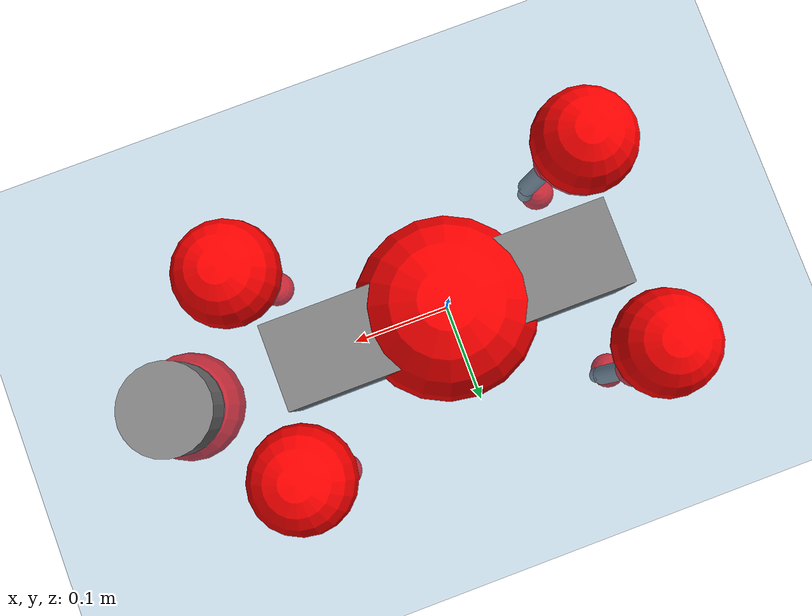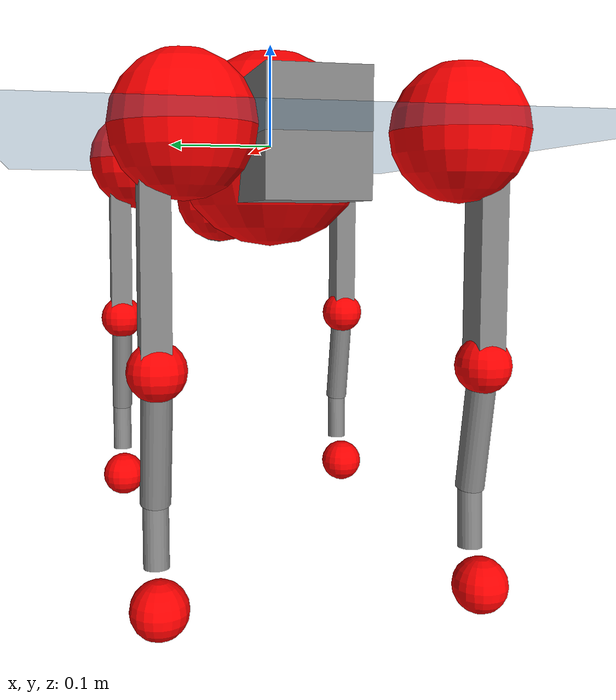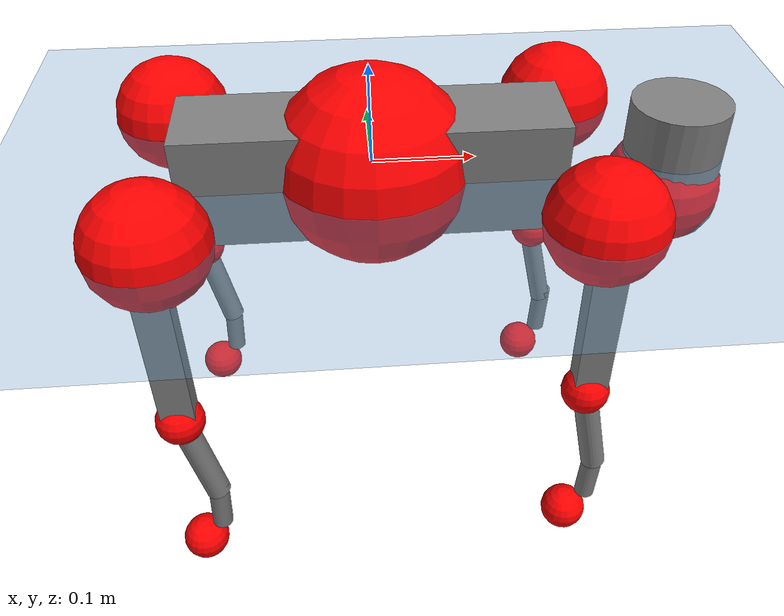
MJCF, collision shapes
<mujoco model="go2">
  <compiler angle="radian" assetdir="assets" balanceinertia="true" inertiafromgeom="false"/>

  <option timestep="0.005" density="1.2" viscosity="2e-05"/>

  <size nkey="1"/>

  <visual>
    <quality shadowsize="8192"/>
    <map shadowclip="0.5"/>
  </visual>

  <default>
    <default class="/">
      <geom contype="0" conaffinity="0" group="1" solref="-1000 -80"/>
      <site size="0.01 0.005 0.005" group="5"/>
      <general forcelimited="true" biastype="affine" gainprm="20" biasprm="0 -20 -0.5"/>
      <default class="go2">
        <joint armature="0.01" damping="0.01" frictionloss="0.2"/>
        <geom condim="1" margin="0.001"/>
        <default class="visual">
          <geom type="mesh" group="2"/>
        </default>
        <default class="collision">
          <geom group="3"/>
          <default class="foot">
            <geom size="0.022 0 0" condim="6" priority="1" friction="0.8 0.02 0.01" solimp="0.015 1 0.022"/>
          </default>
        </default>
        <default class="reward_collision_sphere">
          <geom group="5" rgba="1 0 0 1"/>
        </default>
      </default>
    </default>
  </default>

  <asset>
    <texture type="skybox" colorspace="auto" name="//unnamed_texture_0" builtin="gradient" rgb1="0.95 0.95 0.95" rgb2="0.95 0.95 0.95" width="100" height="600"/>
    <texture type="2d" colorspace="auto" name="texplane" builtin="checker" rgb1="0.345 0.575 0.748" rgb2="0.345 0.575 0.748" markrgb="1 1 1" width="512" height="512"/>
    <material name="MatPlane" class="/" texture="texplane" texuniform="true" texrepeat="2 2" specular="0.9"/>
    <material name="metal" class="/" rgba="0.9 0.95 0.95 1"/>
    <material name="black" class="/" rgba="0 0 0 1"/>
    <material name="white" class="/"/>
    <material name="gray" class="/" rgba="0.671705 0.692426 0.77427 1"/>
    <mesh name="base_0" class="/" file="base_0.obj"/>
    <mesh name="base_1" class="/" file="base_1.obj"/>
    <mesh name="base_2" class="/" file="base_2.obj"/>
    <mesh name="base_3" class="/" file="base_3.obj"/>
    <mesh name="base_4" class="/" file="base_4.obj"/>
    <mesh name="hip_0" class="/" file="hip_0.obj"/>
    <mesh name="hip_1" class="/" file="hip_1.obj"/>
    <mesh name="thigh_0" class="/" file="thigh_0.obj"/>
    <mesh name="thigh_1" class="/" file="thigh_1.obj"/>
    <mesh name="thigh_mirror_0" class="/" file="thigh_mirror_0.obj"/>
    <mesh name="thigh_mirror_1" class="/" file="thigh_mirror_1.obj"/>
    <mesh name="calf_0" class="/" file="calf_0.obj"/>
    <mesh name="calf_1" class="/" file="calf_1.obj"/>
    <mesh name="calf_mirror_0" class="/" file="calf_mirror_0.obj"/>
    <mesh name="calf_mirror_1" class="/" file="calf_mirror_1.obj"/>
    <mesh name="foot" class="/" file="foot.obj"/>
  </asset>

  <worldbody>
    <geom name="floor" class="/" size="100 100 0.125" type="plane" group="0" material="MatPlane"/>
    <light name="toplight_shadow" class="/" pos="0 0 5" dir="0.0990148 0.0990148 -0.990148" type="directional" ambient="0.04 0.04 0.04" diffuse="0.55 0.55 0.55" specular="0.12 0.12 0.12"/>
    <light name="toplight_fill" class="/" pos="0 0 5" dir="0.0990148 0.0990148 -0.990148" type="directional" castshadow="false" ambient="0.04 0.04 0.04" diffuse="0.3 0.3 0.3" specular="0.08 0.08 0.08"/>
    <body name="trunk" childclass="go2" pos="0.000478156 7.44089e-05 -0.0020711" quat="1 0.00045245 0.000458482 0.00060649">
      <inertial pos="0.0222923 0.00138476 -0.00483798" quat="-7.06061e-05 0.713369 0.00643513 0.700759" mass="6.45851" diaginertia="0.132623 0.0906532 0.0142562"/>
      <joint name="//unnamed_joint_0" type="free" armature="0" damping="0" frictionloss="0"/>
      <geom name="//unnamed_geom_1" class="visual" material="black" mesh="base_0"/>
      <geom name="//unnamed_geom_2" class="visual" material="black" mesh="base_1"/>
      <geom name="//unnamed_geom_3" class="visual" material="black" mesh="base_2"/>
      <geom name="//unnamed_geom_4" class="visual" material="white" mesh="base_3"/>
      <geom name="//unnamed_geom_5" class="visual" material="gray" mesh="base_4"/>
      <geom name="trunk_1" class="collision" size="0.18252 0.0453633 0.0553092" type="box"/>
      <geom name="trunk_2" class="collision" size="0.0485169 0.0436652" pos="0.296255 0 0.00892797" type="cylinder"/>
      <geom name="trunk_3" class="collision" size="0.0456058" pos="0.304571 0 -0.0535678"/>
      <geom name="//unnamed_geom_9" class="reward_collision_sphere" size="0.0970337"/>
      <geom name="//unnamed_geom_10" class="reward_collision_sphere" size="0.0582202" pos="0.291058 0 -0.0401759"/>
      <site name="imu" pos="-0.0267671 -0.00208522 0.0339443" size="0.00970337"/>
      <camera name="track" pos="0 -1.95744 0" quat="0.707107 0.707107 0 0" mode="trackcom"/>
      <camera name="ego_camera" pos="0.324322 0 0.0401759" quat="-0.5 -0.5 0.5 0.5"/>
      <body name="FL_hip" pos="0.200153 0.0449497 0.000798589" quat="1 -2.51257e-05 -1.72532e-05 4.96393e-05">
        <inertial pos="-0.00692098 0.00170814 -0.00230109" quat="0.491779 0.494954 0.512457 0.500561" mass="0.624398" diaginertia="0.00108583 0.000543657 0.000274022"/>
        <joint name="FL_hip_joint" pos="0 0 0" axis="0.999984 0.000662785 0.00563551" range="-1.05192 1.03656" armature="0.00967764" damping="0.00126057" frictionloss="0.187613"/>
        <geom name="//unnamed_geom_11" class="visual" material="metal" mesh="hip_0"/>
        <geom name="//unnamed_geom_12" class="visual" material="gray" mesh="hip_1"/>
        <geom name="//unnamed_geom_13" class="collision" size="0.0446355 0.0194067" pos="0 0.0782977 0" quat="0.707107 0.707107 0 0" type="cylinder"/>
        <geom name="//unnamed_geom_14" class="reward_collision_sphere" size="0.0582202" pos="0 0.0685105 0"/>
        <body name="FL_thigh" pos="-0.00190762 0.0923898 0.00227726" quat="1 1.27113e-05 -1.9334e-05 1.94934e-05">
          <inertial pos="-0.00489242 -0.0217431 -0.0291687" quat="0.83032 0.086948 -0.0235283 0.54996" mass="1.02964" diaginertia="0.00708427 0.00515523 0.000484265"/>
          <joint name="FL_thigh_joint" pos="0 0 0" axis="0.00217501 0.999978 0.00619434" stiffness="0.00288198" range="-1.55791 3.49459" armature="0.0095179" damping="0.00977899" frictionloss="0.194475"/>
          <geom name="//unnamed_geom_15" class="visual" material="metal" mesh="thigh_0"/>
          <geom name="//unnamed_geom_16" class="visual" material="gray" mesh="thigh_1"/>
          <geom name="//unnamed_geom_17" class="collision" size="0.103341 0.0118866 0.0164957" pos="0 0 -0.0950829" quat="0.707107 0 0.707107 0" type="box"/>
          <body name="FL_calf" pos="-0.000726101 -0.000766618 -0.190095" quat="1 8.82045e-06 -5.71718e-05 6.23483e-05">
            <inertial pos="0.0042663 -0.00232148 -0.125218" quat="0.710534 0.00201209 -0.00464015 0.703644" mass="0.220357" diaginertia="0.00177257 0.00132474 3.01691e-05"/>
            <joint name="FL_calf_joint" pos="0 0 0" axis="-0.000820099 0.999998 -0.0017077" stiffness="0.00607764" range="-2.77058 -0.843474" armature="0.00983032" damping="0.0110825" frictionloss="0.215237"/>
            <geom name="//unnamed_geom_18" class="visual" material="gray" mesh="calf_0"/>
            <geom name="//unnamed_geom_19" class="visual" material="black" mesh="calf_1"/>
            <geom name="FL_calf0" class="collision" size="0.011644 0.0582202" pos="0.00831594 0 -0.0535678" quat="0.994493 0 -0.104807 0" type="cylinder"/>
            <geom name="//unnamed_geom_21" class="collision" size="0.0106737 0.031536" pos="0.0207898 0 -0.132134" quat="0.999688 0 0.0249974 0" type="cylinder"/>
            <geom name="//unnamed_geom_22" class="visual" pos="0 0 -0.190166" quat="1 0 0 0" material="black" mesh="foot"/>
            <geom name="FL_foot" class="foot" size="0.0170338" pos="-0.00207898 0 -0.190166"/>
            <geom name="//unnamed_geom_24" class="reward_collision_sphere" size="0.0242584"/>
            <geom name="//unnamed_geom_25" class="reward_collision_sphere" size="0.0242584" pos="-0.00207898 0 -0.190166"/>
            <site name="FL_foot" class="foot" pos="-0.00207898 0 -0.190166" size="0.00970337"/>
          </body>
        </body>
      </body>
      <body name="FR_hip" pos="0.20179 -0.0460311 -0.000191888" quat="0.999999 0.000928756 -2.95711e-05 -0.00079001">
        <inertial pos="-0.00458908 -0.0019761 -0.000465879" quat="0.490137 0.511164 0.502834 0.495616" mass="0.642845" diaginertia="0.0010859 0.000543206 0.000276586"/>
        <joint name="FR_hip_joint" pos="0 0 0" axis="1 0.000679808 -0.000263655" range="-1.09023 1.06196" armature="0.00945224" damping="0.00825292" frictionloss="0.193529"/>
        <geom name="//unnamed_geom_26" class="visual" pos="0 7.48533e-10 3.21061e-08" quat="4.63268e-05 1 0 0" material="metal" mesh="hip_0"/>
        <geom name="//unnamed_geom_27" class="visual" pos="0 1.21346e-09 -7.94107e-08" quat="4.63268e-05 1 0 0" material="gray" mesh="hip_1"/>
        <geom name="//unnamed_geom_28" class="collision" size="0.0446355 0.0194067" pos="0 -0.0782977 0" quat="0.707107 0.707107 0 0" type="cylinder"/>
        <geom name="//unnamed_geom_29" class="reward_collision_sphere" size="0.0582202" pos="0 -0.0685105 0"/>
        <body name="FR_thigh" pos="0.000145476 -0.0933954 0.0024052" quat="1 -0.000178071 -5.58217e-06 -0.000261181">
          <inertial pos="-0.0031015 0.0216949 -0.0279508" quat="0.548753 -0.0188143 0.0846127 0.831479" mass="1.06358" diaginertia="0.00723071 0.00519318 0.000493458"/>
          <joint name="FR_thigh_joint" pos="0 0 0" axis="0.00068499 -1 -8.12279e-05" stiffness="0.00585035" range="-3.49312 1.57766" armature="0.0102002" damping="0.00446513" frictionloss="0.186258"/>
          <geom name="//unnamed_geom_30" class="visual" material="metal" mesh="thigh_mirror_0"/>
          <geom name="//unnamed_geom_31" class="visual" material="gray" mesh="thigh_mirror_1"/>
          <geom name="//unnamed_geom_32" class="collision" size="0.103341 0.0118866 0.0164957" pos="0 0 -0.0950829" quat="0.707107 0 0.707107 0" type="box"/>
          <body name="FR_calf" pos="-0.00219837 -7.64302e-05 -0.189035" quat="1 1.98846e-05 -2.81899e-05 1.65466e-05">
            <inertial pos="0.00699401 -0.000880585 -0.125455" quat="0.696296 -0.00166956 0.00536407 0.717733" mass="0.215173" diaginertia="0.00176324 0.00130909 2.95581e-05"/>
            <joint name="FR_calf_joint" pos="0 0 0" axis="0.000870823 -0.999999 -0.000603948" stiffness="0.00239708" range="0.841939 2.71262" armature="0.00963901" damping="0.00207306" frictionloss="0.202096"/>
            <geom name="//unnamed_geom_33" class="visual" material="gray" mesh="calf_mirror_0"/>
            <geom name="//unnamed_geom_34" class="visual" material="black" mesh="calf_mirror_1"/>
            <geom name="FR_calf0" class="collision" size="0.0126144 0.0582202" pos="0.0103949 0 -0.0535678" quat="0.995004 0 -0.0998334 0" type="cylinder"/>
            <geom name="//unnamed_geom_36" class="collision" size="0.0106737 0.031536" pos="0.0207898 0 -0.132134" quat="0.999688 0 0.0249974 0" type="cylinder"/>
            <geom name="//unnamed_geom_37" class="visual" pos="0 0 -0.190166" quat="1 0 0 0" material="black" mesh="foot"/>
            <geom name="FR_foot" class="foot" size="0.0213279" pos="-0.00207898 0 -0.190166"/>
            <geom name="//unnamed_geom_39" class="reward_collision_sphere" size="0.0242584"/>
            <geom name="//unnamed_geom_40" class="reward_collision_sphere" size="0.0242584" pos="-0.00207898 0 -0.190166"/>
            <site name="FR_foot" class="foot" pos="-0.00207898 0 -0.190166" size="0.00970337"/>
          </body>
        </body>
      </body>
      <body name="RL_hip" pos="-0.200954 0.0454405 0.00126397" quat="1 -2.23572e-05 5.99059e-05 7.37143e-05">
        <inertial pos="0.00627961 0.000927982 -0.00195566" quat="0.501619 0.498579 0.497259 0.502524" mass="0.618665" diaginertia="0.00109017 0.000531386 0.000271364"/>
        <joint name="RL_hip_joint" pos="0 0 0" axis="-0.999856 0.00554126 0.0160435" stiffness="0.00147488" range="-1.07726 1.07821" armature="0.0103132" damping="0.0126713" frictionloss="0.192029"/>
        <geom name="//unnamed_geom_41" class="visual" pos="-1.27795e-09 0 -2.50507e-07" quat="4.63268e-05 0 1 0" material="metal" mesh="hip_0"/>
        <geom name="//unnamed_geom_42" class="visual" pos="-2.0717e-09 0 -2.22164e-07" quat="4.63268e-05 0 1 0" material="gray" mesh="hip_1"/>
        <geom name="//unnamed_geom_43" class="collision" size="0.0446355 0.0194067" pos="0 0.0782977 0" quat="0.707107 0.707107 0 0" type="cylinder"/>
        <geom name="//unnamed_geom_44" class="reward_collision_sphere" size="0.0582202" pos="0 0.0685105 0"/>
        <body name="RL_thigh" pos="0.000973457 0.0917075 0.00101268" quat="1 -0.000219222 8.21429e-05 2.32269e-05">
          <inertial pos="-0.00159324 -0.0220398 -0.0314082" quat="0.829567 0.0848974 -0.0198051 0.55156" mass="1.0812" diaginertia="0.00759605 0.00542283 0.000514091"/>
          <joint name="RL_thigh_joint" pos="0 0 0" axis="-0.0136487 0.999842 -0.0114121" range="-0.522393 4.53991" armature="0.00977483" damping="0.00149627" frictionloss="0.1852"/>
          <geom name="//unnamed_geom_45" class="visual" material="metal" mesh="thigh_0"/>
          <geom name="//unnamed_geom_46" class="visual" material="gray" mesh="thigh_1"/>
          <geom name="//unnamed_geom_47" class="collision" size="0.103341 0.0118866 0.0164957" pos="0 0 -0.0950829" quat="0.707107 0 0.707107 0" type="box"/>
          <body name="RL_calf" pos="-0.000595054 -0.00156883 -0.191153" quat="1 8.59229e-05 0.000121644 0.000253727">
            <inertial pos="0.00451624 1.11286e-05 -0.128393" quat="0.713489 -0.00133788 0.00184971 0.700663" mass="0.220021" diaginertia="0.00180082 0.00132089 2.9651e-05"/>
            <joint name="RL_calf_joint" pos="0 0 0" axis="0.000369231 0.999951 -0.00984554" stiffness="0.00133846" range="-2.71556 -0.882908" armature="0.0104963" damping="0" frictionloss="0.192816"/>
            <geom name="//unnamed_geom_48" class="visual" material="gray" mesh="calf_0"/>
            <geom name="//unnamed_geom_49" class="visual" material="black" mesh="calf_1"/>
            <geom name="RL_calf0" class="collision" size="0.0126144 0.0582202" pos="0.0103949 0 -0.0535678" quat="0.995004 0 -0.0998334 0" type="cylinder"/>
            <geom name="//unnamed_geom_51" class="collision" size="0.0106737 0.031536" pos="0.0207898 0 -0.132134" quat="0.999688 0 0.0249974 0" type="cylinder"/>
            <geom name="//unnamed_geom_52" class="visual" pos="0 0 -0.190166" quat="1 0 0 0" material="black" mesh="foot"/>
            <geom name="RL_foot" class="foot" size="0.0190307" pos="-0.00207898 0 -0.190166"/>
            <geom name="//unnamed_geom_54" class="reward_collision_sphere" size="0.0242584"/>
            <geom name="//unnamed_geom_55" class="reward_collision_sphere" size="0.0242584" pos="-0.00207898 0 -0.190166"/>
            <site name="RL_foot" class="foot" pos="-0.00207898 0 -0.190166" size="0.00970337"/>
          </body>
        </body>
      </body>
      <body name="RR_hip" pos="-0.198895 -0.0461214 0.000480236" quat="1 0.000221616 2.58266e-05 3.55747e-05">
        <inertial pos="0.00471459 -0.00161626 0.000639262" quat="0.50583 0.491984 0.49786 0.504206" mass="0.617051" diaginertia="0.00112643 0.000547025 0.000277004"/>
        <joint name="RR_hip_joint" pos="0 0 0" axis="-0.999932 0.00812052 -0.00841898" range="-1.02962 1.04695" armature="0.00965336" damping="0.0045551" frictionloss="0.215968"/>
        <geom name="//unnamed_geom_56" class="visual" pos="1.27584e-09 7.48533e-10 -2.82613e-07" quat="2.14617e-09 4.63268e-05 4.63268e-05 -1" material="metal" mesh="hip_0"/>
        <geom name="//unnamed_geom_57" class="visual" pos="2.07691e-09 1.21346e-09 -1.42753e-07" quat="2.14617e-09 4.63268e-05 4.63268e-05 -1" material="gray" mesh="hip_1"/>
        <geom name="//unnamed_geom_58" class="collision" size="0.0446355 0.0194067" pos="0 -0.0782977 0" quat="0.707107 0.707107 0 0" type="cylinder"/>
        <geom name="//unnamed_geom_59" class="reward_collision_sphere" size="0.0582202" pos="0 -0.0685105 0"/>
        <body name="RR_thigh" pos="0.000555114 -0.0939429 -0.00177015" quat="1 7.57063e-06 -3.53908e-05 9.58273e-06">
          <inertial pos="-0.00272161 0.0229237 -0.0311042" quat="0.551643 -0.019979 0.0847471 0.829523" mass="1.03466" diaginertia="0.00741805 0.00531785 0.00050132"/>
          <joint name="RR_thigh_joint" pos="0 0 0" axis="0.00120318 -0.999999 -0.000110518" stiffness="0.00188179" range="-4.53518 0.51078" armature="0.00972443" damping="0.020287" frictionloss="0.200259"/>
          <geom name="//unnamed_geom_60" class="visual" material="metal" mesh="thigh_mirror_0"/>
          <geom name="//unnamed_geom_61" class="visual" material="gray" mesh="thigh_mirror_1"/>
          <geom name="//unnamed_geom_62" class="collision" size="0.103341 0.0118866 0.0164957" pos="0 0 -0.0950829" quat="0.707107 0 0.707107 0" type="box"/>
          <body name="RR_calf" pos="-0.000943516 0.000640336 -0.192076" quat="0.999999 -0.000332924 0.000305787 -0.000990122">
            <inertial pos="0.00557955 0.000400565 -0.125933" quat="0.705707 0.000589932 -0.00430294 0.708491" mass="0.219886" diaginertia="0.00179688 0.00129842 2.93593e-05"/>
            <joint name="RR_calf_joint" pos="0 0 0" axis="-0.013478 -0.999907 0.00188002" range="0.86509 2.73732" armature="0.00966885" damping="0.00480052" frictionloss="0.2011"/>
            <geom name="//unnamed_geom_63" class="visual" material="gray" mesh="calf_mirror_0"/>
            <geom name="//unnamed_geom_64" class="visual" material="black" mesh="calf_mirror_1"/>
            <geom name="RR_calf0" class="collision" size="0.0126144 0.0582202" pos="0.0103949 0 -0.0535678" quat="0.995004 0 -0.0998334 0" type="cylinder"/>
            <geom name="//unnamed_geom_66" class="collision" size="0.0106737 0.031536" pos="0.0207898 0 -0.132134" quat="0.999688 0 0.0249974 0" type="cylinder"/>
            <geom name="//unnamed_geom_67" class="visual" pos="0 0 -0.190166" quat="1 0 0 0" material="black" mesh="foot"/>
            <geom name="RR_foot" class="foot" size="0.0236596" pos="-0.00207898 0 -0.190166"/>
            <geom name="//unnamed_geom_69" class="reward_collision_sphere" size="0.0242584"/>
            <geom name="//unnamed_geom_70" class="reward_collision_sphere" size="0.0242584" pos="-0.00207898 0 -0.190166"/>
            <site name="RR_foot" class="foot" pos="-0.00207898 0 -0.190166" size="0.00970337"/>
          </body>
        </body>
      </body>
    </body>
  </worldbody>

  <contact>
    <pair class="/" geom1="floor" geom2="FL_foot" name="//unnamed_contact_0"/>
    <pair class="/" geom1="floor" geom2="FR_foot" name="//unnamed_contact_1"/>
    <pair class="/" geom1="floor" geom2="RL_foot" name="//unnamed_contact_2"/>
    <pair class="/" geom1="floor" geom2="RR_foot" name="//unnamed_contact_3"/>
  </contact>

  <actuator>
    <general name="FL_hip" class="/" joint="FL_hip_joint" forcerange="-23.1889 23.1889" gainprm="19.3721" biasprm="0 -19.3721 -0.497476"/>
    <general name="FL_thigh" class="/" joint="FL_thigh_joint" forcerange="-23.1408 23.1408" gainprm="19.3721" biasprm="0 -19.3721 -0.497476"/>
    <general name="FL_calf" class="/" joint="FL_calf_joint" forcerange="-43.2104 43.2104" gainprm="19.3721" biasprm="0 -19.3721 -0.497476"/>
    <general name="FR_hip" class="/" joint="FR_hip_joint" forcerange="-22.7828 22.7828" gainprm="19.3721" biasprm="0 -19.3721 -0.497476"/>
    <general name="FR_thigh" class="/" joint="FR_thigh_joint" forcerange="-22.4775 22.4775" gainprm="19.3721" biasprm="0 -19.3721 -0.497476"/>
    <general name="FR_calf" class="/" joint="FR_calf_joint" forcerange="-44.2307 44.2307" gainprm="19.3721" biasprm="0 -19.3721 -0.497476"/>
    <general name="RL_hip" class="/" joint="RL_hip_joint" forcerange="-23.1772 23.1772" gainprm="19.3721" biasprm="0 -19.3721 -0.497476"/>
    <general name="RL_thigh" class="/" joint="RL_thigh_joint" forcerange="-21.3076 21.3076" gainprm="19.3721" biasprm="0 -19.3721 -0.497476"/>
    <general name="RL_calf" class="/" joint="RL_calf_joint" forcerange="-46.6689 46.6689" gainprm="19.3721" biasprm="0 -19.3721 -0.497476"/>
    <general name="RR_hip" class="/" joint="RR_hip_joint" forcerange="-23.1239 23.1239" gainprm="19.3721" biasprm="0 -19.3721 -0.497476"/>
    <general name="RR_thigh" class="/" joint="RR_thigh_joint" forcerange="-23.8293 23.8293" gainprm="19.3721" biasprm="0 -19.3721 -0.497476"/>
    <general name="RR_calf" class="/" joint="RR_calf_joint" forcerange="-43.8947 43.8947" gainprm="19.3721" biasprm="0 -19.3721 -0.497476"/>
  </actuator>

  <sensor>
    <gyro site="imu" name="imu_angular_velocity"/>
    <velocimeter site="imu" name="imu_linear_velocity"/>
    <framelinvel objtype="site" objname="FL_foot" name="FL_foot_global_linear_velocity"/>
    <framelinvel objtype="site" objname="FR_foot" name="FR_foot_global_linear_velocity"/>
    <framelinvel objtype="site" objname="RL_foot" name="RL_foot_global_linear_velocity"/>
    <framelinvel objtype="site" objname="RR_foot" name="RR_foot_global_linear_velocity"/>
  </sensor>

  <keyframe>
    <key name="home" qpos="0 0 0.325 1 0 0 0 0.1 0.8 -1.5 -0.1 -0.8 1.5 -0.1 0.8 -1.5 0.1 -0.8 1.5"/>
  </keyframe>
</mujoco>
